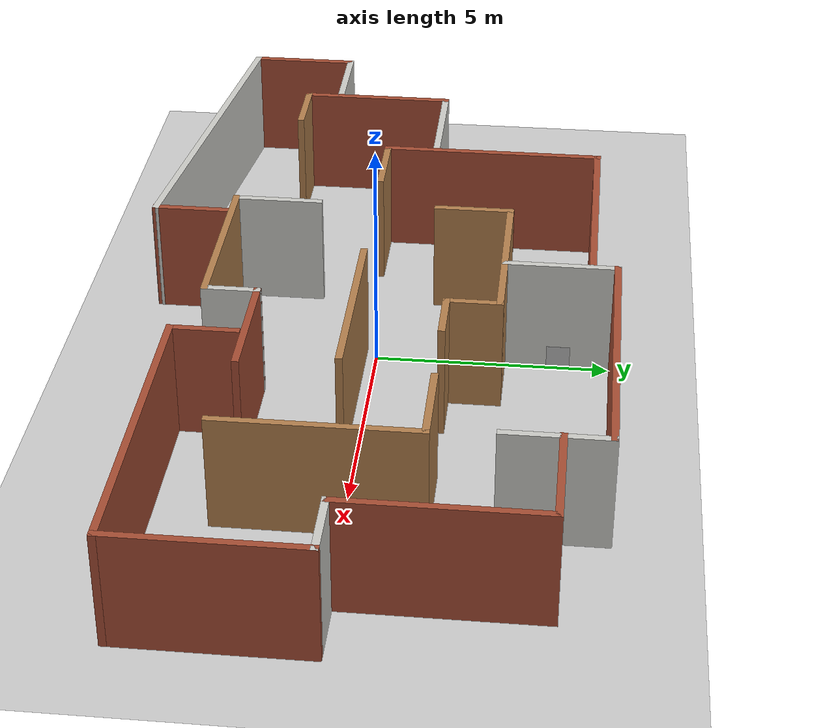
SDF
<sdf version="1.6">
 <world name="default">
  <plugin name="gazebo_ros_state" filename="libgazebo_ros_state.so">
   <ros><namespace>/gazebo</namespace></ros>
   <update_rate>1.0</update_rate>
  </plugin>
  <light name="sun" type="directional">
   <pose>0 0 10 0 -0 0</pose>
   <diffuse>0.8 0.8 0.8 1</diffuse>
   <specular>0.2 0.2 0.2 1</specular>
   <attenuation>
    <range>1000</range>
    <constant>0.9</constant>
    <linear>0.01</linear>
    <quadratic>0.001</quadratic>
   </attenuation>
   <direction>-0.5 0.1 -0.9</direction>
  </light>
  <model name="ground_plane">
   <static>1</static>
   <link name="link">
    <collision name="collision">
     <geometry><plane><normal>0 0 1</normal><size>100 100</size></plane></geometry>
     <surface>
      <contact><collide_bitmask>65535</collide_bitmask></contact>
      <friction><ode><mu>100</mu><mu2>50</mu2></ode></friction>
     </surface>
    </collision>
    <visual name="visual">
     <cast_shadows>0</cast_shadows>
     <geometry><plane><normal>0 0 1</normal><size>100 100</size></plane></geometry>
     <material>
      <script><uri>file://media/materials/scripts/gazebo.material</uri><name>Gazebo/Grey</name></script>
     </material>
    </visual>
   </link>
  </model>
  <gravity>0 0 -9.8</gravity>
  <magnetic_field>6e-06 2.3e-05 -4.2e-05</magnetic_field>
  <atmosphere type="adiabatic"/>
  <physics name="default_physics" default="0" type="ode">
   <max_step_size>0.001</max_step_size>
   <real_time_factor>1</real_time_factor>
   <real_time_update_rate>1000</real_time_update_rate>
  </physics>
  <scene><ambient>0.4 0.4 0.4 1</ambient><background>0.7 0.7 0.7 1</background><shadows>1</shadows></scene>
  <audio><device>default</device></audio>
  <spherical_coordinates>
   <surface_model>EARTH_WGS84</surface_model>
   <latitude_deg>0</latitude_deg>
   <longitude_deg>0</longitude_deg>
   <elevation>0</elevation>
   <heading_deg>0</heading_deg>
  </spherical_coordinates>
  <model name="dat160_w4">
   <link name="Wall_11">
    <collision name="Wall_11_Collision">
     <geometry><box><size>4.25 0.15 2.5</size></box></geometry>
     <pose>0 0 1.25 0 -0 0</pose>
    </collision>
    <visual name="Wall_11_Visual">
     <pose>0 0 1.25 0 -0 0</pose>
     <geometry><box><size>4.25 0.15 2.5</size></box></geometry>
     <material>
      <script><uri>file://media/materials/scripts/gazebo.material</uri><name>Gazebo/Wood</name></script>
      <ambient>1 1 1 1</ambient>
     </material>
     <meta><layer>0</layer></meta>
    </visual>
    <pose>1.71796 -0.294996 0 0 -0 0</pose>
   </link>
   <link name="Wall_144">
    <collision name="Wall_144_Collision">
     <geometry><box><size>4.25 0.15 2.5</size></box></geometry>
     <pose>0 0 1.25 0 -0 0</pose>
    </collision>
    <visual name="Wall_144_Visual">
     <pose>0 0 1.25 0 -0 0</pose>
     <geometry><box><size>4.25 0.15 2.5</size></box></geometry>
     <material>
      <script><uri>file://media/materials/scripts/gazebo.material</uri><name>Gazebo/Wood</name></script>
      <ambient>1 1 1 1</ambient>
     </material>
     <meta><layer>0</layer></meta>
    </visual>
    <pose>6.07374 -0.439174 0 0 -0 -1.5708</pose>
   </link>
   <link name="Wall_146">
    <collision name="Wall_146_Collision">
     <geometry><box><size>2.75 0.15 2.5</size></box></geometry>
     <pose>0 0 1.25 0 -0 0</pose>
    </collision>
    <visual name="Wall_146_Visual">
     <pose>0 0 1.25 0 -0 0</pose>
     <geometry><box><size>2.75 0.15 2.5</size></box></geometry>
     <material>
      <script><uri>file://media/materials/scripts/gazebo.material</uri><name>Gazebo/Bricks</name></script>
      <ambient>1 1 1 1</ambient>
     </material>
     <meta><layer>0</layer></meta>
    </visual>
    <pose>2.77374 -2.28917 0 0 -0 0</pose>
   </link>
   <link name="Wall_148">
    <collision name="Wall_148_Collision">
     <geometry><box><size>1.25 0.15 2.5</size></box></geometry>
     <pose>0 0 1.25 0 -0 0</pose>
    </collision>
    <visual name="Wall_148_Visual">
     <pose>0 0 1.25 0 -0 0</pose>
     <geometry><box><size>1.25 0.15 2.5</size></box></geometry>
     <material>
      <script><uri>file://media/materials/scripts/gazebo.material</uri><name>Gazebo/Wood</name></script>
      <ambient>1 1 1 1</ambient>
     </material>
     <meta><layer>0</layer></meta>
    </visual>
    <pose>2.02374 1.61083 0 0 -0 0</pose>
   </link>
   <link name="Wall_150">
    <collision name="Wall_150_Collision">
     <geometry><box><size>2 0.15 2.5</size></box></geometry>
     <pose>0 0 1.25 0 -0 0</pose>
    </collision>
    <visual name="Wall_150_Visual">
     <pose>0 0 1.25 0 -0 0</pose>
     <geometry><box><size>2 0.15 2.5</size></box></geometry>
     <material>
      <script><uri>file://media/materials/scripts/gazebo.material</uri><name>Gazebo/Wood</name></script>
      <ambient>1 1 1 1</ambient>
     </material>
     <meta><layer>0</layer></meta>
    </visual>
    <pose>5.14874 1.61083 0 0 -0 3.14159</pose>
   </link>
   <link name="Wall_152">
    <collision name="Wall_152_Collision">
     <geometry><box><size>2.5 0.15 2.5</size></box></geometry>
     <pose>0 0 1.25 0 -0 0</pose>
    </collision>
    <visual name="Wall_152_Visual">
     <pose>0 0 1.25 0 -0 0</pose>
     <geometry><box><size>2.5 0.15 2.5</size></box></geometry>
     <material>
      <script><uri>file://media/materials/scripts/gazebo.material</uri><name>Gazebo/CeilingTiled</name></script>
      <ambient>1 1 1 1</ambient>
     </material>
     <meta><layer>0</layer></meta>
    </visual>
    <pose>-0.145686 3.91154 0 0 -0 1.5708</pose>
   </link>
   <link name="Wall_153">
    <collision name="Wall_153_Collision">
     <geometry><box><size>6.25 0.15 2.5</size></box></geometry>
     <pose>0 0 1.25 0 -0 0</pose>
    </collision>
    <visual name="Wall_153_Visual">
     <pose>0 0 1.25 0 -0 0</pose>
     <geometry><box><size>6.25 0.15 2.5</size></box></geometry>
     <material>
      <script><uri>file://media/materials/scripts/gazebo.material</uri><name>Gazebo/Bricks</name></script>
      <ambient>1 1 1 1</ambient>
     </material>
     <meta><layer>0</layer></meta>
    </visual>
    <pose>2.90431 5.08654 0 0 -0 0</pose>
   </link>
   <link name="Wall_154">
    <collision name="Wall_154_Collision">
     <geometry><box><size>2.25 0.15 2.5</size></box></geometry>
     <pose>0 0 1.25 0 -0 0</pose>
    </collision>
    <visual name="Wall_154_Visual">
     <pose>0 0 1.25 0 -0 0</pose>
     <geometry><box><size>2.25 0.15 2.5</size></box></geometry>
     <material>
      <script><uri>file://media/materials/scripts/gazebo.material</uri><name>Gazebo/CeilingTiled</name></script>
      <ambient>1 1 1 1</ambient>
     </material>
     <meta><layer>0</layer></meta>
    </visual>
    <pose>5.95431 4.03654 0 0 -0 -1.5708</pose>
   </link>
   <link name="Wall_156">
    <collision name="Wall_156_Collision">
     <geometry><box><size>2.5 0.15 2.5</size></box></geometry>
     <pose>0 0 1.25 0 -0 0</pose>
    </collision>
    <visual name="Wall_156_Visual">
     <pose>0 0 1.25 0 -0 0</pose>
     <geometry><box><size>2.5 0.15 2.5</size></box></geometry>
     <material>
      <script><uri>file://media/materials/scripts/gazebo.material</uri><name>Gazebo/Bricks</name></script>
      <ambient>1 1 1 1</ambient>
     </material>
     <meta><layer>0</layer></meta>
    </visual>
    <pose>7.11266 4.14751 0 0 -0 0</pose>
   </link>
   <link name="Wall_157">
    <collision name="Wall_157_Collision">
     <geometry><box><size>4.25 0.15 2.5</size></box></geometry>
     <pose>0 0 1.25 0 -0 0</pose>
    </collision>
    <visual name="Wall_157_Visual">
     <pose>0 0 1.25 0 -0 0</pose>
     <geometry><box><size>4.25 0.15 2.5</size></box></geometry>
     <material>
      <script><uri>file://media/materials/scripts/gazebo.material</uri><name>Gazebo/Bricks</name></script>
      <ambient>1 1 1 1</ambient>
     </material>
     <meta><layer>0</layer></meta>
    </visual>
    <pose>8.28766 2.09751 0 0 -0 -1.5708</pose>
   </link>
   <link name="Wall_158">
    <collision name="Wall_158_Collision">
     <geometry><box><size>1.5 0.15 2.5</size></box></geometry>
     <pose>0 0 1.25 0 -0 0</pose>
    </collision>
    <visual name="Wall_158_Visual">
     <pose>0 0 1.25 0 -0 0</pose>
     <geometry><box><size>1.5 0.15 2.5</size></box></geometry>
     <material>
      <script><uri>file://media/materials/scripts/gazebo.material</uri><name>Gazebo/CeilingTiled</name></script>
      <ambient>1 1 1 1</ambient>
     </material>
     <meta><layer>0</layer></meta>
    </visual>
    <pose>8.96266 0.047509 0 0 -0 0</pose>
   </link>
   <link name="Wall_159">
    <collision name="Wall_159_Collision">
     <geometry><box><size>4 0.15 2.5</size></box></geometry>
     <pose>0 0 1.25 0 -0 0</pose>
    </collision>
    <visual name="Wall_159_Visual">
     <pose>0 0 1.25 0 -0 0</pose>
     <geometry><box><size>4 0.15 2.5</size></box></geometry>
     <material>
      <script><uri>file://media/materials/scripts/gazebo.material</uri><name>Gazebo/Bricks</name></script>
      <ambient>1 1 1 1</ambient>
     </material>
     <meta><layer>0</layer></meta>
    </visual>
    <pose>9.63766 -1.87749 0 0 -0 -1.5708</pose>
   </link>
   <link name="Wall_160">
    <collision name="Wall_160_Collision">
     <geometry><box><size>6.75 0.15 2.5</size></box></geometry>
     <pose>0 0 1.25 0 -0 0</pose>
    </collision>
    <visual name="Wall_160_Visual">
     <pose>0 0 1.25 0 -0 0</pose>
     <geometry><box><size>6.75 0.15 2.5</size></box></geometry>
     <material>
      <script><uri>file://media/materials/scripts/gazebo.material</uri><name>Gazebo/Bricks</name></script>
      <ambient>1 1 1 1</ambient>
     </material>
     <meta><layer>0</layer></meta>
    </visual>
    <pose>6.33766 -3.80249 0 0 -0 3.14159</pose>
   </link>
   <link name="Wall_161">
    <collision name="Wall_161_Collision">
     <geometry><box><size>1.5 0.15 2.5</size></box></geometry>
     <pose>0 0 1.25 0 -0 0</pose>
    </collision>
    <visual name="Wall_161_Visual">
     <pose>0 0 1.25 0 -0 0</pose>
     <geometry><box><size>1.5 0.15 2.5</size></box></geometry>
     <material>
      <script><uri>file://media/materials/scripts/gazebo.material</uri><name>Gazebo/Bricks</name></script>
      <ambient>1 1 1 1</ambient>
     </material>
     <meta><layer>0</layer></meta>
    </visual>
    <pose>3.03766 -3.12749 0 0 -0 1.5708</pose>
   </link>
   <link name="Wall_163">
    <collision name="Wall_163_Collision">
     <geometry><box><size>1.75 0.15 2.5</size></box></geometry>
     <pose>0 0 1.25 0 -0 0</pose>
    </collision>
    <visual name="Wall_163_Visual">
     <pose>0 0 1.25 0 -0 0</pose>
     <geometry><box><size>1.75 0.15 2.5</size></box></geometry>
     <material>
      <script><uri>file://media/materials/scripts/gazebo.material</uri><name>Gazebo/Wood</name></script>
      <ambient>1 1 1 1</ambient>
     </material>
     <meta><layer>0</layer></meta>
    </visual>
    <pose>-2.37626 1.91083 0 0 -0 -1.5708</pose>
   </link>
   <link name="Wall_167">
    <collision name="Wall_167_Collision">
     <geometry><box><size>2 0.15 2.5</size></box></geometry>
     <pose>0 0 1.25 0 -0 0</pose>
    </collision>
    <visual name="Wall_167_Visual">
     <pose>0 0 1.25 0 -0 0</pose>
     <geometry><box><size>2 0.15 2.5</size></box></geometry>
     <material>
      <script><uri>file://media/materials/scripts/gazebo.material</uri><name>Gazebo/CeilingTiled</name></script>
      <ambient>1 1 1 1</ambient>
     </material>
     <meta><layer>0</layer></meta>
    </visual>
    <pose>-2.37626 -2.46417 0 0 -0 -1.5708</pose>
   </link>
   <link name="Wall_169">
    <collision name="Wall_169_Collision">
     <geometry><box><size>5 0.15 2.5</size></box></geometry>
     <pose>0 0 1.25 0 -0 0</pose>
    </collision>
    <visual name="Wall_169_Visual">
     <pose>0 0 1.25 0 -0 0</pose>
     <geometry><box><size>5 0.15 2.5</size></box></geometry>
     <material>
      <script><uri>file://media/materials/scripts/gazebo.material</uri><name>Gazebo/Bricks</name></script>
      <ambient>1 1 1 1</ambient>
     </material>
     <meta><layer>0</layer></meta>
    </visual>
    <pose>-2.66321 4.56386 0 0 -0 3.14159</pose>
   </link>
   <link name="Wall_170">
    <collision name="Wall_170_Collision">
     <geometry><box><size>5 0.15 2.5</size></box></geometry>
     <pose>0 0 1.25 0 -0 0</pose>
    </collision>
    <visual name="Wall_170_Visual">
     <pose>0 0 1.25 0 -0 0</pose>
     <geometry><box><size>5 0.15 2.5</size></box></geometry>
     <material>
      <script><uri>file://media/materials/scripts/gazebo.material</uri><name>Gazebo/Bricks</name></script>
      <ambient>1 1 1 1</ambient>
     </material>
     <meta><layer>0</layer></meta>
    </visual>
    <pose>-5.08821 2.13886 0 0 -0 -1.5708</pose>
   </link>
   <link name="Wall_171">
    <collision name="Wall_171_Collision">
     <geometry><box><size>1.75 0.15 2.5</size></box></geometry>
     <pose>0 0 1.25 0 -0 0</pose>
    </collision>
    <visual name="Wall_171_Visual">
     <pose>0 0 1.25 0 -0 0</pose>
     <geometry><box><size>1.75 0.15 2.5</size></box></geometry>
     <material>
      <script><uri>file://media/materials/scripts/gazebo.material</uri><name>Gazebo/Wood</name></script>
      <ambient>1 1 1 1</ambient>
     </material>
     <meta><layer>0</layer></meta>
    </visual>
    <pose>-4.28821 -0.28614 0 0 -0 0</pose>
   </link>
   <link name="Wall_173">
    <collision name="Wall_173_Collision">
     <geometry><box><size>2.75 0.15 2.5</size></box></geometry>
     <pose>0 0 1.25 0 -0 0</pose>
    </collision>
    <visual name="Wall_173_Visual">
     <pose>0 0 1.25 0 -0 0</pose>
     <geometry><box><size>2.75 0.15 2.5</size></box></geometry>
     <material>
      <script><uri>file://media/materials/scripts/gazebo.material</uri><name>Gazebo/CeilingTiled</name></script>
      <ambient>1 1 1 1</ambient>
     </material>
     <meta><layer>0</layer></meta>
    </visual>
    <pose>-6.39564 0.839832 0 0 -0 3.14159</pose>
   </link>
   <link name="Wall_174">
    <collision name="Wall_174_Collision">
     <geometry><box><size>3.5 0.15 2.5</size></box></geometry>
     <pose>0 0 1.25 0 -0 0</pose>
    </collision>
    <visual name="Wall_174_Visual">
     <pose>0 0 1.25 0 -0 0</pose>
     <geometry><box><size>3.5 0.15 2.5</size></box></geometry>
     <material>
      <script><uri>file://media/materials/scripts/gazebo.material</uri><name>Gazebo/Bricks</name></script>
      <ambient>1 1 1 1</ambient>
     </material>
     <meta><layer>0</layer></meta>
    </visual>
    <pose>-7.69564 -0.835168 0 0 -0 -1.5708</pose>
   </link>
   <link name="Wall_175">
    <collision name="Wall_175_Collision">
     <geometry><box><size>1.5 0.15 2.5</size></box></geometry>
     <pose>0 0 1.25 0 -0 0</pose>
    </collision>
    <visual name="Wall_175_Visual">
     <pose>0 0 1.25 0 -0 0</pose>
     <geometry><box><size>1.5 0.15 2.5</size></box></geometry>
     <material>
      <script><uri>file://media/materials/scripts/gazebo.material</uri><name>Gazebo/Wood</name></script>
      <ambient>1 1 1 1</ambient>
     </material>
     <meta><layer>0</layer></meta>
    </visual>
    <pose>-7.02064 -2.51017 0 0 -0 0</pose>
   </link>
   <link name="Wall_177">
    <collision name="Wall_177_Collision">
     <geometry><box><size>2 0.15 2.5</size></box></geometry>
     <pose>0 0 1.25 0 -0 0</pose>
    </collision>
    <visual name="Wall_177_Visual">
     <pose>0 0 1.25 0 -0 0</pose>
     <geometry><box><size>2 0.15 2.5</size></box></geometry>
     <material>
      <script><uri>file://media/materials/scripts/gazebo.material</uri><name>Gazebo/CeilingTiled</name></script>
      <ambient>1 1 1 1</ambient>
     </material>
     <meta><layer>0</layer></meta>
    </visual>
    <pose>-8.70379 -1.72767 0 0 -0 3.14159</pose>
   </link>
   <link name="Wall_178">
    <collision name="Wall_178_Collision">
     <geometry><box><size>2.5 0.15 2.5</size></box></geometry>
     <pose>0 0 1.25 0 -0 0</pose>
    </collision>
    <visual name="Wall_178_Visual">
     <pose>0 0 1.25 0 -0 0</pose>
     <geometry><box><size>2.5 0.15 2.5</size></box></geometry>
     <material>
      <script><uri>file://media/materials/scripts/gazebo.material</uri><name>Gazebo/Bricks</name></script>
      <ambient>1 1 1 1</ambient>
     </material>
     <meta><layer>0</layer></meta>
    </visual>
    <pose>-9.62879 -2.90267 0 0 -0 -1.5708</pose>
   </link>
   <link name="Wall_179">
    <collision name="Wall_179_Collision">
     <geometry><box><size>8.06344 0.15 2.5</size></box></geometry>
     <pose>0 0 1.25 0 -0 0</pose>
    </collision>
    <visual name="Wall_179_Visual">
     <pose>0 0 1.25 0 -0 0</pose>
     <geometry><box><size>8.06344 0.15 2.5</size></box></geometry>
     <material>
      <script><uri>file://media/materials/scripts/gazebo.material</uri><name>Gazebo/CeilingTiled</name></script>
      <ambient>1 1 1 1</ambient>
     </material>
     <meta><layer>0</layer></meta>
    </visual>
    <pose>-5.70379 -4.57767 0 0 -0 -0.126706</pose>
   </link>
   <link name="Wall_180">
    <collision name="Wall_180_Collision">
     <geometry><box><size>1.75 0.15 2.5</size></box></geometry>
     <pose>0 0 1.25 0 -0 0</pose>
    </collision>
    <visual name="Wall_180_Visual">
     <pose>0 0 1.25 0 -0 0</pose>
     <geometry><box><size>1.75 0.15 2.5</size></box></geometry>
     <material>
      <script><uri>file://media/materials/scripts/gazebo.material</uri><name>Gazebo/Bricks</name></script>
      <ambient>1 1 1 1</ambient>
     </material>
     <meta><layer>0</layer></meta>
    </visual>
    <pose>-1.77879 -4.27767 0 0 -0 1.5708</pose>
   </link>
   <link name="Wall_3">
    <collision name="Wall_3_Collision">
     <geometry><box><size>4 0.15 2.5</size></box></geometry>
     <pose>0 0 1.25 0 -0 0</pose>
    </collision>
    <visual name="Wall_3_Visual">
     <pose>0 0 1.25 0 -0 0</pose>
     <geometry><box><size>4 0.15 2.5</size></box></geometry>
     <material>
      <script><uri>file://media/materials/scripts/gazebo.material</uri><name>Gazebo/Wood</name></script>
      <ambient>1 1 1 1</ambient>
     </material>
     <meta><layer>0</layer></meta>
    </visual>
    <pose>-0.451262 2.71083 0 0 -0 0</pose>
   </link>
   <link name="Wall_6">
    <collision name="Wall_6_Collision">
     <geometry><box><size>4 0.15 2.5</size></box></geometry>
     <pose>0 0 1.25 0 -0 0</pose>
    </collision>
    <visual name="Wall_6_Visual">
     <pose>0 0 1.25 0 -0 0</pose>
     <geometry><box><size>4 0.15 2.5</size></box></geometry>
     <material>
      <script><uri>file://media/materials/scripts/gazebo.material</uri><name>Gazebo/Wood</name></script>
      <ambient>1 1 1 1</ambient>
     </material>
     <meta><layer>0</layer></meta>
    </visual>
    <pose>-0.451262 -3.38917 0 0 -0 0</pose>
   </link>
   <link name="Wall_7">
    <collision name="Wall_7_Collision">
     <geometry><box><size>1.25 0.15 2.5</size></box></geometry>
     <pose>0 0 1.25 0 -0 0</pose>
    </collision>
    <visual name="Wall_7_Visual">
     <pose>0 0 1.25 0 -0 0</pose>
     <geometry><box><size>1.25 0.15 2.5</size></box></geometry>
     <material>
      <script><uri>file://media/materials/scripts/gazebo.material</uri><name>Gazebo/CeilingTiled</name></script>
      <ambient>1 1 1 1</ambient>
     </material>
     <meta><layer>0</layer></meta>
    </visual>
    <pose>1.47374 -2.83917 0 0 -0 1.5708</pose>
   </link>
   <link name="Wall_9">
    <collision name="Wall_9_Collision">
     <geometry><box><size>1.25 0.15 2.5</size></box></geometry>
     <pose>0 0 1.25 0 -0 0</pose>
    </collision>
    <visual name="Wall_9_Visual">
     <pose>0 0 1.25 0 -0 0</pose>
     <geometry><box><size>1.25 0.15 2.5</size></box></geometry>
     <material>
      <script><uri>file://media/materials/scripts/gazebo.material</uri><name>Gazebo/Wood</name></script>
      <ambient>1 1 1 1</ambient>
     </material>
     <meta><layer>0</layer></meta>
    </visual>
    <pose>1.47374 2.16083 0 0 -0 -1.5708</pose>
   </link>
   <static>1</static>
  </model>
  <model name="Baby">
   <static>1</static>
   <link name="link">
    <visual name="visual"><geometry><mesh><uri>model://baby/meshes/Baby.dae</uri></mesh></geometry></visual>
   </link>
   <pose>-0.229674 3.79349 1.3354 3.12852 -0 0</pose>
  </model>
  <model name="Marker3">
   <static>1</static>
   <link name="link">
    <visual name="visual"><geometry><mesh><uri>model://marker3/meshes/Marker3.dae</uri></mesh></geometry></visual>
   </link>
   <pose>8.90625 -0.031987 0 0 -0 1.57719</pose>
  </model>
  <model name="Marker4">
   <static>1</static>
   <link name="link">
    <visual name="visual"><geometry><mesh><uri>model://marker4/meshes/Marker4.dae</uri></mesh></geometry></visual>
   </link>
   <pose>-0.074162 3.91837 0 0 -0 0</pose>
  </model>
  <light name="user_point_light_0" type="point">
   <pose>-8.95201 -2.88454 1 0 -0 0</pose>
   <diffuse>0.5 0.5 0.5 1</diffuse>
   <specular>0.1 0.1 0.1 1</specular>
   <attenuation>
    <range>20</range>
    <constant>0.5</constant>
    <linear>0.01</linear>
    <quadratic>0.001</quadratic>
   </attenuation>
   <cast_shadows>0</cast_shadows>
   <direction>0 0 -1</direction>
  </light>
  <light name="user_point_light_1" type="point">
   <pose>-3.46808 -2.61009 1 0 -0 0</pose>
   <diffuse>0.5 0.5 0.5 1</diffuse>
   <specular>0.1 0.1 0.1 1</specular>
   <attenuation>
    <range>20</range>
    <constant>0.5</constant>
    <linear>0.01</linear>
    <quadratic>0.001</quadratic>
   </attenuation>
   <cast_shadows>0</cast_shadows>
   <direction>0 0 -1</direction>
  </light>
  <light name="user_point_light_2" type="point">
   <pose>-1.41644 3.75755 1 0 -0 0</pose>
   <diffuse>0.5 0.5 0.5 1</diffuse>
   <specular>0.1 0.1 0.1 1</specular>
   <attenuation>
    <range>20</range>
    <constant>0.5</constant>
    <linear>0.01</linear>
    <quadratic>0.001</quadratic>
   </attenuation>
   <cast_shadows>0</cast_shadows>
   <direction>0 0 -1</direction>
  </light>
  <light name="user_point_light_3" type="point">
   <pose>1.26651 3.98538 1 0 -0 0</pose>
   <diffuse>0.5 0.5 0.5 1</diffuse>
   <specular>0.1 0.1 0.1 1</specular>
   <attenuation>
    <range>20</range>
    <constant>0.5</constant>
    <linear>0.01</linear>
    <quadratic>0.001</quadratic>
   </attenuation>
   <cast_shadows>0</cast_shadows>
   <direction>0 0 -1</direction>
  </light>
  <light name="user_point_light_4" type="point">
   <pose>8.94735 -1.29932 1 0 -0 0</pose>
   <diffuse>0.5 0.5 0.5 1</diffuse>
   <specular>0.1 0.1 0.1 1</specular>
   <attenuation>
    <range>20</range>
    <constant>0.5</constant>
    <linear>0.01</linear>
    <quadratic>0.001</quadratic>
   </attenuation>
   <cast_shadows>0</cast_shadows>
   <direction>0 0 -1</direction>
  </light>
 </world>
</sdf>
